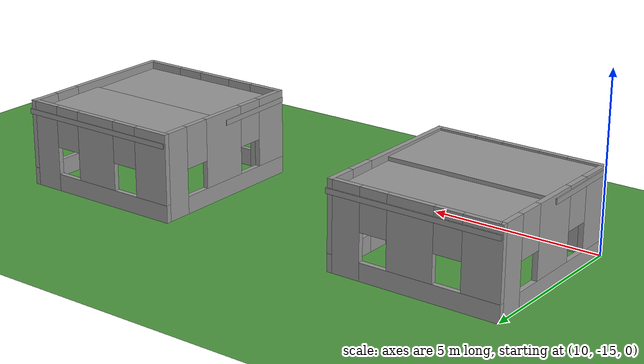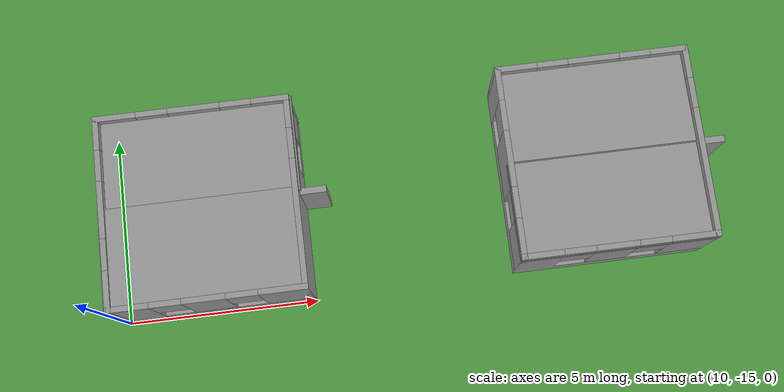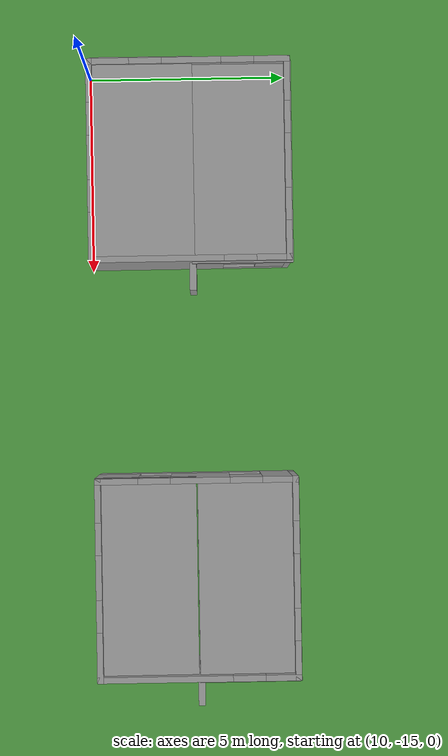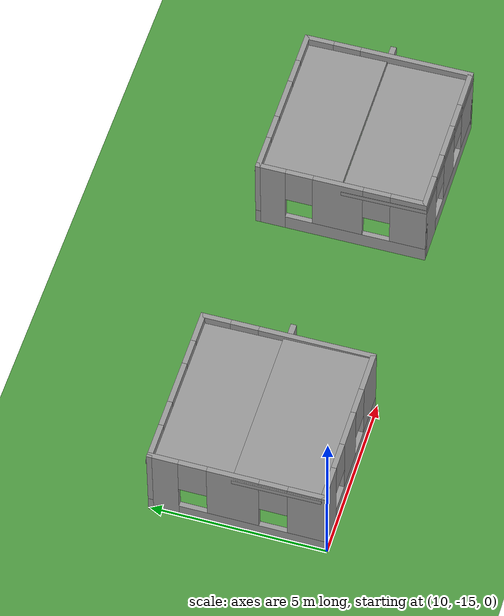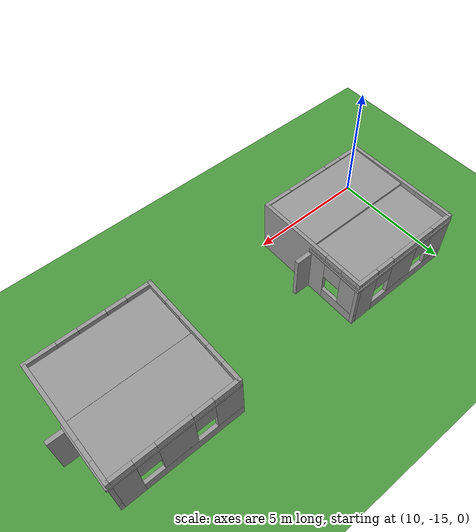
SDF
<sdf version="1.6">
 <world name="default">
  <model name="ground_plane">
   <static>1</static>
   <link name="link">
    <collision name="collision">
     <geometry><plane><normal>0 0 1</normal><size>500 500</size></plane></geometry>
     <surface><friction><ode><mu>100</mu><mu2>50</mu2></ode></friction></surface>
    </collision>
    <visual name="grass">
     <pose>0 0 -0.1 0 -0 0</pose>
     <cast_shadows>0</cast_shadows>
     <geometry><plane><normal>0 0 1</normal><size>100 100</size></plane></geometry>
     <material>
      <script><uri>file://media/materials/scripts/gazebo.material</uri><name>Gazebo/Grass</name></script>
     </material>
    </visual>
   </link>
  </model>
  <model name="5m">
   <pose>22.7986 -9.88215 2.17512 1.55349 -0 0</pose>
   <link name="Wall_0">
    <collision name="Wall_0_Collision">
     <geometry><box><size>5 0.15 2.5</size></box></geometry>
     <pose>0 0 1.25 0 -0 0</pose>
    </collision>
    <visual name="Wall_0_Visual">
     <pose>0 0 1.25 0 -0 0</pose>
     <geometry><box><size>5 0.15 2.5</size></box></geometry>
     <material>
      <script><uri>file://media/materials/scripts/gazebo.material</uri><name>Gazebo/Grey</name></script>
      <ambient>1 1 1 1</ambient>
     </material>
     <meta><layer>0</layer></meta>
    </visual>
   </link>
   <static>1</static>
  </model>
  <model name="House_1">
   <pose>12.4567 -12.4562 0 0 -0 0</pose>
   <link name="Door_0">
    <collision name="Door_0_Collision">
     <geometry><box><size>0.9 0.17 2</size></box></geometry>
     <pose>0 0 1 0 -0 0</pose>
    </collision>
    <visual name="Door_0_Visual">
     <pose>0 0 1 0 -0 0</pose>
     <geometry><box><size>0.9 0.17 2</size></box></geometry>
     <material>
      <script><uri>file://media/materials/scripts/gazebo.material</uri><name>Gazebo/Grey</name></script>
     </material>
    </visual>
    <pose>2.72267 0.051323 0 0 -0 0</pose>
   </link>
   <link name="Wall_2">
    <pose>0 2.425 0 0 -0 3.14159</pose>
    <visual name="Wall_2_Visual_0">
     <pose>-2.01333 0 1.25 0 -0 0</pose>
     <geometry><box><size>0.973339 0.15 2.5</size></box></geometry>
     <material>
      <script><uri>file://media/materials/scripts/gazebo.material</uri><name>Gazebo/Grey</name></script>
      <ambient>1 1 1 1</ambient>
     </material>
     <meta><layer>0</layer></meta>
    </visual>
    <collision name="Wall_2_Collision_0">
     <geometry><box><size>0.973339 0.15 2.5</size></box></geometry>
     <pose>-2.01333 0 1.25 0 -0 0</pose>
    </collision>
    <visual name="Wall_2_Visual_1">
     <pose>0.48667 0 0.25 0 -0 0</pose>
     <geometry><box><size>4.02666 0.15 0.5</size></box></geometry>
     <material>
      <script><uri>file://media/materials/scripts/gazebo.material</uri><name>Gazebo/Grey</name></script>
      <ambient>1 1 1 1</ambient>
     </material>
     <meta><layer>0</layer></meta>
    </visual>
    <collision name="Wall_2_Collision_1">
     <geometry><box><size>4.02666 0.15 0.5</size></box></geometry>
     <pose>0.48667 0 0.25 0 -0 0</pose>
    </collision>
    <visual name="Wall_2_Visual_2">
     <pose>-0.062653 0 1.5 0 -0 0</pose>
     <geometry><box><size>1.32802 0.15 2</size></box></geometry>
     <material>
      <script><uri>file://media/materials/scripts/gazebo.material</uri><name>Gazebo/Grey</name></script>
      <ambient>1 1 1 1</ambient>
     </material>
     <meta><layer>0</layer></meta>
    </visual>
    <collision name="Wall_2_Collision_2">
     <geometry><box><size>1.32802 0.15 2</size></box></geometry>
     <pose>-0.062653 0 1.5 0 -0 0</pose>
    </collision>
    <visual name="Wall_2_Visual_3">
     <pose>1.95068 0 1.5 0 -0 0</pose>
     <geometry><box><size>1.09865 0.15 2</size></box></geometry>
     <material>
      <script><uri>file://media/materials/scripts/gazebo.material</uri><name>Gazebo/Grey</name></script>
      <ambient>1 1 1 1</ambient>
     </material>
     <meta><layer>0</layer></meta>
    </visual>
    <collision name="Wall_2_Collision_3">
     <geometry><box><size>1.09865 0.15 2</size></box></geometry>
     <pose>1.95068 0 1.5 0 -0 0</pose>
    </collision>
    <visual name="Wall_2_Visual_4">
     <pose>-1.12666 0 1.9 0 -0 0</pose>
     <geometry><box><size>0.8 0.15 1.2</size></box></geometry>
     <material>
      <script><uri>file://media/materials/scripts/gazebo.material</uri><name>Gazebo/Grey</name></script>
      <ambient>1 1 1 1</ambient>
     </material>
     <meta><layer>0</layer></meta>
    </visual>
    <collision name="Wall_2_Collision_4">
     <geometry><box><size>0.8 0.15 1.2</size></box></geometry>
     <pose>-1.12666 0 1.9 0 -0 0</pose>
    </collision>
    <visual name="Wall_2_Visual_5">
     <pose>1.00135 0 1.9 0 -0 0</pose>
     <geometry><box><size>0.8 0.15 1.2</size></box></geometry>
     <material>
      <script><uri>file://media/materials/scripts/gazebo.material</uri><name>Gazebo/Grey</name></script>
      <ambient>1 1 1 1</ambient>
     </material>
     <meta><layer>0</layer></meta>
    </visual>
    <collision name="Wall_2_Collision_5">
     <geometry><box><size>0.8 0.15 1.2</size></box></geometry>
     <pose>1.00135 0 1.9 0 -0 0</pose>
    </collision>
   </link>
   <link name="Wall_3">
    <pose>-2.425 0 0 0 -0 -1.5708</pose>
    <visual name="Wall_3_Visual_0">
     <pose>-2.06087 0 1.25 0 -0 0</pose>
     <geometry><box><size>0.878268 0.15 2.5</size></box></geometry>
     <material>
      <script><uri>file://media/materials/scripts/gazebo.material</uri><name>Gazebo/Grey</name></script>
      <ambient>1 1 1 1</ambient>
     </material>
     <meta><layer>0</layer></meta>
    </visual>
    <collision name="Wall_3_Collision_0">
     <geometry><box><size>0.878268 0.15 2.5</size></box></geometry>
     <pose>-2.06087 0 1.25 0 -0 0</pose>
    </collision>
    <visual name="Wall_3_Visual_1">
     <pose>0.439134 0 0.25 0 -0 0</pose>
     <geometry><box><size>4.12173 0.15 0.5</size></box></geometry>
     <material>
      <script><uri>file://media/materials/scripts/gazebo.material</uri><name>Gazebo/Grey</name></script>
      <ambient>1 1 1 1</ambient>
     </material>
     <meta><layer>0</layer></meta>
    </visual>
    <collision name="Wall_3_Collision_1">
     <geometry><box><size>4.12173 0.15 0.5</size></box></geometry>
     <pose>0.439134 0 0.25 0 -0 0</pose>
    </collision>
    <visual name="Wall_3_Visual_2">
     <pose>-0.091224 0 1.5 0 -0 0</pose>
     <geometry><box><size>1.46102 0.15 2</size></box></geometry>
     <material>
      <script><uri>file://media/materials/scripts/gazebo.material</uri><name>Gazebo/Grey</name></script>
      <ambient>1 1 1 1</ambient>
     </material>
     <meta><layer>0</layer></meta>
    </visual>
    <collision name="Wall_3_Collision_2">
     <geometry><box><size>1.46102 0.15 2</size></box></geometry>
     <pose>-0.091224 0 1.5 0 -0 0</pose>
    </collision>
    <visual name="Wall_3_Visual_3">
     <pose>1.96964 0 1.5 0 -0 0</pose>
     <geometry><box><size>1.06072 0.15 2</size></box></geometry>
     <material>
      <script><uri>file://media/materials/scripts/gazebo.material</uri><name>Gazebo/Grey</name></script>
      <ambient>1 1 1 1</ambient>
     </material>
     <meta><layer>0</layer></meta>
    </visual>
    <collision name="Wall_3_Collision_3">
     <geometry><box><size>1.06072 0.15 2</size></box></geometry>
     <pose>1.96964 0 1.5 0 -0 0</pose>
    </collision>
    <visual name="Wall_3_Visual_4">
     <pose>-1.22173 0 1.9 0 -0 0</pose>
     <geometry><box><size>0.8 0.15 1.2</size></box></geometry>
     <material>
      <script><uri>file://media/materials/scripts/gazebo.material</uri><name>Gazebo/Grey</name></script>
      <ambient>1 1 1 1</ambient>
     </material>
     <meta><layer>0</layer></meta>
    </visual>
    <collision name="Wall_3_Collision_4">
     <geometry><box><size>0.8 0.15 1.2</size></box></geometry>
     <pose>-1.22173 0 1.9 0 -0 0</pose>
    </collision>
    <visual name="Wall_3_Visual_5">
     <pose>1.03929 0 1.9 0 -0 0</pose>
     <geometry><box><size>0.8 0.15 1.2</size></box></geometry>
     <material>
      <script><uri>file://media/materials/scripts/gazebo.material</uri><name>Gazebo/Grey</name></script>
      <ambient>1 1 1 1</ambient>
     </material>
     <meta><layer>0</layer></meta>
    </visual>
    <collision name="Wall_3_Collision_5">
     <geometry><box><size>0.8 0.15 1.2</size></box></geometry>
     <pose>1.03929 0 1.9 0 -0 0</pose>
    </collision>
   </link>
   <link name="Wall_4">
    <pose>0 -2.425 0 0 -0 0</pose>
    <visual name="Wall_4_Visual_0">
     <pose>-1.96398 0 1.25 0 -0 0</pose>
     <geometry><box><size>1.07204 0.15 2.5</size></box></geometry>
     <material>
      <script><uri>file://media/materials/scripts/gazebo.material</uri><name>Gazebo/Grey</name></script>
      <ambient>1 1 1 1</ambient>
     </material>
     <meta><layer>0</layer></meta>
    </visual>
    <collision name="Wall_4_Collision_0">
     <geometry><box><size>1.07204 0.15 2.5</size></box></geometry>
     <pose>-1.96398 0 1.25 0 -0 0</pose>
    </collision>
    <visual name="Wall_4_Visual_1">
     <pose>0.536022 0 0.25 0 -0 0</pose>
     <geometry><box><size>3.92796 0.15 0.5</size></box></geometry>
     <material>
      <script><uri>file://media/materials/scripts/gazebo.material</uri><name>Gazebo/Grey</name></script>
      <ambient>1 1 1 1</ambient>
     </material>
     <meta><layer>0</layer></meta>
    </visual>
    <collision name="Wall_4_Collision_1">
     <geometry><box><size>3.92796 0.15 0.5</size></box></geometry>
     <pose>0.536022 0 0.25 0 -0 0</pose>
    </collision>
    <visual name="Wall_4_Visual_2">
     <pose>-0.083648 0 1.5 0 -0 0</pose>
     <geometry><box><size>1.08861 0.15 2</size></box></geometry>
     <material>
      <script><uri>file://media/materials/scripts/gazebo.material</uri><name>Gazebo/Grey</name></script>
      <ambient>1 1 1 1</ambient>
     </material>
     <meta><layer>0</layer></meta>
    </visual>
    <collision name="Wall_4_Collision_2">
     <geometry><box><size>1.08861 0.15 2</size></box></geometry>
     <pose>-0.083648 0 1.5 0 -0 0</pose>
    </collision>
    <visual name="Wall_4_Visual_3">
     <pose>1.88033 0 1.5 0 -0 0</pose>
     <geometry><box><size>1.23934 0.15 2</size></box></geometry>
     <material>
      <script><uri>file://media/materials/scripts/gazebo.material</uri><name>Gazebo/Grey</name></script>
      <ambient>1 1 1 1</ambient>
     </material>
     <meta><layer>0</layer></meta>
    </visual>
    <collision name="Wall_4_Collision_3">
     <geometry><box><size>1.23934 0.15 2</size></box></geometry>
     <pose>1.88033 0 1.5 0 -0 0</pose>
    </collision>
    <visual name="Wall_4_Visual_4">
     <pose>-1.02796 0 1.9 0 -0 0</pose>
     <geometry><box><size>0.8 0.15 1.2</size></box></geometry>
     <material>
      <script><uri>file://media/materials/scripts/gazebo.material</uri><name>Gazebo/Grey</name></script>
      <ambient>1 1 1 1</ambient>
     </material>
     <meta><layer>0</layer></meta>
    </visual>
    <collision name="Wall_4_Collision_4">
     <geometry><box><size>0.8 0.15 1.2</size></box></geometry>
     <pose>-1.02796 0 1.9 0 -0 0</pose>
    </collision>
    <visual name="Wall_4_Visual_5">
     <pose>0.860659 0 1.9 0 -0 0</pose>
     <geometry><box><size>0.8 0.15 1.2</size></box></geometry>
     <material>
      <script><uri>file://media/materials/scripts/gazebo.material</uri><name>Gazebo/Grey</name></script>
      <ambient>1 1 1 1</ambient>
     </material>
     <meta><layer>0</layer></meta>
    </visual>
    <collision name="Wall_4_Collision_5">
     <geometry><box><size>0.8 0.15 1.2</size></box></geometry>
     <pose>0.860659 0 1.9 0 -0 0</pose>
    </collision>
   </link>
   <link name="Wall_5">
    <pose>2.425 0 0 0 -0 1.5708</pose>
    <visual name="Wall_5_Visual_0">
     <pose>-0.839134 0 1.25 0 -0 0</pose>
     <geometry><box><size>3.32173 0.15 2.5</size></box></geometry>
     <material>
      <script><uri>file://media/materials/scripts/gazebo.material</uri><name>Gazebo/Grey</name></script>
      <ambient>1 1 1 1</ambient>
     </material>
     <meta><layer>0</layer></meta>
    </visual>
    <collision name="Wall_5_Collision_0">
     <geometry><box><size>3.32173 0.15 2.5</size></box></geometry>
     <pose>-0.839134 0 1.25 0 -0 0</pose>
    </collision>
    <visual name="Wall_5_Visual_1">
     <pose>1.66087 0 0.25 0 -0 0</pose>
     <geometry><box><size>1.67827 0.15 0.5</size></box></geometry>
     <material>
      <script><uri>file://media/materials/scripts/gazebo.material</uri><name>Gazebo/Grey</name></script>
      <ambient>1 1 1 1</ambient>
     </material>
     <meta><layer>0</layer></meta>
    </visual>
    <collision name="Wall_5_Collision_1">
     <geometry><box><size>1.67827 0.15 0.5</size></box></geometry>
     <pose>1.66087 0 0.25 0 -0 0</pose>
    </collision>
    <visual name="Wall_5_Visual_2">
     <pose>2.06087 0 1.5 0 -0 0</pose>
     <geometry><box><size>0.878268 0.15 2</size></box></geometry>
     <material>
      <script><uri>file://media/materials/scripts/gazebo.material</uri><name>Gazebo/Grey</name></script>
      <ambient>1 1 1 1</ambient>
     </material>
     <meta><layer>0</layer></meta>
    </visual>
    <collision name="Wall_5_Collision_2">
     <geometry><box><size>0.878268 0.15 2</size></box></geometry>
     <pose>2.06087 0 1.5 0 -0 0</pose>
    </collision>
    <visual name="Wall_5_Visual_3">
     <pose>1.22173 0 1.9 0 -0 0</pose>
     <geometry><box><size>0.8 0.15 1.2</size></box></geometry>
     <material>
      <script><uri>file://media/materials/scripts/gazebo.material</uri><name>Gazebo/Grey</name></script>
      <ambient>1 1 1 1</ambient>
     </material>
     <meta><layer>0</layer></meta>
    </visual>
    <collision name="Wall_5_Collision_3">
     <geometry><box><size>0.8 0.15 1.2</size></box></geometry>
     <pose>1.22173 0 1.9 0 -0 0</pose>
    </collision>
   </link>
   <static>1</static>
  </model>
  <model name="House_2">
   <pose>22.7443 -12.4024 0 0 -0 0</pose>
   <link name="Door_0">
    <collision name="Door_0_Collision">
     <geometry><box><size>0.9 0.17 2</size></box></geometry>
     <pose>0 0 1 0 -0 0</pose>
    </collision>
    <visual name="Door_0_Visual">
     <pose>0 0 1 0 -0 0</pose>
     <geometry><box><size>0.9 0.17 2</size></box></geometry>
     <material>
      <script><uri>file://media/materials/scripts/gazebo.material</uri><name>Gazebo/Grey</name></script>
     </material>
    </visual>
    <pose>2.72267 0.051323 0 0 -0 0</pose>
   </link>
   <link name="Wall_2">
    <pose>0 2.425 0 0 -0 3.14159</pose>
    <visual name="Wall_2_Visual_0">
     <pose>-2.01333 0 1.25 0 -0 0</pose>
     <geometry><box><size>0.973339 0.15 2.5</size></box></geometry>
     <material>
      <script><uri>file://media/materials/scripts/gazebo.material</uri><name>Gazebo/Grey</name></script>
      <ambient>1 1 1 1</ambient>
     </material>
     <meta><layer>0</layer></meta>
    </visual>
    <collision name="Wall_2_Collision_0">
     <geometry><box><size>0.973339 0.15 2.5</size></box></geometry>
     <pose>-2.01333 0 1.25 0 -0 0</pose>
    </collision>
    <visual name="Wall_2_Visual_1">
     <pose>0.48667 0 0.25 0 -0 0</pose>
     <geometry><box><size>4.02666 0.15 0.5</size></box></geometry>
     <material>
      <script><uri>file://media/materials/scripts/gazebo.material</uri><name>Gazebo/Grey</name></script>
      <ambient>1 1 1 1</ambient>
     </material>
     <meta><layer>0</layer></meta>
    </visual>
    <collision name="Wall_2_Collision_1">
     <geometry><box><size>4.02666 0.15 0.5</size></box></geometry>
     <pose>0.48667 0 0.25 0 -0 0</pose>
    </collision>
    <visual name="Wall_2_Visual_2">
     <pose>-0.062653 0 1.5 0 -0 0</pose>
     <geometry><box><size>1.32802 0.15 2</size></box></geometry>
     <material>
      <script><uri>file://media/materials/scripts/gazebo.material</uri><name>Gazebo/Grey</name></script>
      <ambient>1 1 1 1</ambient>
     </material>
     <meta><layer>0</layer></meta>
    </visual>
    <collision name="Wall_2_Collision_2">
     <geometry><box><size>1.32802 0.15 2</size></box></geometry>
     <pose>-0.062653 0 1.5 0 -0 0</pose>
    </collision>
    <visual name="Wall_2_Visual_3">
     <pose>1.95068 0 1.5 0 -0 0</pose>
     <geometry><box><size>1.09865 0.15 2</size></box></geometry>
     <material>
      <script><uri>file://media/materials/scripts/gazebo.material</uri><name>Gazebo/Grey</name></script>
      <ambient>1 1 1 1</ambient>
     </material>
     <meta><layer>0</layer></meta>
    </visual>
    <collision name="Wall_2_Collision_3">
     <geometry><box><size>1.09865 0.15 2</size></box></geometry>
     <pose>1.95068 0 1.5 0 -0 0</pose>
    </collision>
    <visual name="Wall_2_Visual_4">
     <pose>-1.12666 0 1.9 0 -0 0</pose>
     <geometry><box><size>0.8 0.15 1.2</size></box></geometry>
     <material>
      <script><uri>file://media/materials/scripts/gazebo.material</uri><name>Gazebo/Grey</name></script>
      <ambient>1 1 1 1</ambient>
     </material>
     <meta><layer>0</layer></meta>
    </visual>
    <collision name="Wall_2_Collision_4">
     <geometry><box><size>0.8 0.15 1.2</size></box></geometry>
     <pose>-1.12666 0 1.9 0 -0 0</pose>
    </collision>
    <visual name="Wall_2_Visual_5">
     <pose>1.00135 0 1.9 0 -0 0</pose>
     <geometry><box><size>0.8 0.15 1.2</size></box></geometry>
     <material>
      <script><uri>file://media/materials/scripts/gazebo.material</uri><name>Gazebo/Grey</name></script>
      <ambient>1 1 1 1</ambient>
     </material>
     <meta><layer>0</layer></meta>
    </visual>
    <collision name="Wall_2_Collision_5">
     <geometry><box><size>0.8 0.15 1.2</size></box></geometry>
     <pose>1.00135 0 1.9 0 -0 0</pose>
    </collision>
   </link>
   <link name="Wall_3">
    <pose>-2.425 0 0 0 -0 -1.5708</pose>
    <visual name="Wall_3_Visual_0">
     <pose>-2.06087 0 1.25 0 -0 0</pose>
     <geometry><box><size>0.878268 0.15 2.5</size></box></geometry>
     <material>
      <script><uri>file://media/materials/scripts/gazebo.material</uri><name>Gazebo/Grey</name></script>
      <ambient>1 1 1 1</ambient>
     </material>
     <meta><layer>0</layer></meta>
    </visual>
    <collision name="Wall_3_Collision_0">
     <geometry><box><size>0.878268 0.15 2.5</size></box></geometry>
     <pose>-2.06087 0 1.25 0 -0 0</pose>
    </collision>
    <visual name="Wall_3_Visual_1">
     <pose>0.439134 0 0.25 0 -0 0</pose>
     <geometry><box><size>4.12173 0.15 0.5</size></box></geometry>
     <material>
      <script><uri>file://media/materials/scripts/gazebo.material</uri><name>Gazebo/Grey</name></script>
      <ambient>1 1 1 1</ambient>
     </material>
     <meta><layer>0</layer></meta>
    </visual>
    <collision name="Wall_3_Collision_1">
     <geometry><box><size>4.12173 0.15 0.5</size></box></geometry>
     <pose>0.439134 0 0.25 0 -0 0</pose>
    </collision>
    <visual name="Wall_3_Visual_2">
     <pose>-0.091224 0 1.5 0 -0 0</pose>
     <geometry><box><size>1.46102 0.15 2</size></box></geometry>
     <material>
      <script><uri>file://media/materials/scripts/gazebo.material</uri><name>Gazebo/Grey</name></script>
      <ambient>1 1 1 1</ambient>
     </material>
     <meta><layer>0</layer></meta>
    </visual>
    <collision name="Wall_3_Collision_2">
     <geometry><box><size>1.46102 0.15 2</size></box></geometry>
     <pose>-0.091224 0 1.5 0 -0 0</pose>
    </collision>
    <visual name="Wall_3_Visual_3">
     <pose>1.96964 0 1.5 0 -0 0</pose>
     <geometry><box><size>1.06072 0.15 2</size></box></geometry>
     <material>
      <script><uri>file://media/materials/scripts/gazebo.material</uri><name>Gazebo/Grey</name></script>
      <ambient>1 1 1 1</ambient>
     </material>
     <meta><layer>0</layer></meta>
    </visual>
    <collision name="Wall_3_Collision_3">
     <geometry><box><size>1.06072 0.15 2</size></box></geometry>
     <pose>1.96964 0 1.5 0 -0 0</pose>
    </collision>
    <visual name="Wall_3_Visual_4">
     <pose>-1.22173 0 1.9 0 -0 0</pose>
     <geometry><box><size>0.8 0.15 1.2</size></box></geometry>
     <material>
      <script><uri>file://media/materials/scripts/gazebo.material</uri><name>Gazebo/Grey</name></script>
      <ambient>1 1 1 1</ambient>
     </material>
     <meta><layer>0</layer></meta>
    </visual>
    <collision name="Wall_3_Collision_4">
     <geometry><box><size>0.8 0.15 1.2</size></box></geometry>
     <pose>-1.22173 0 1.9 0 -0 0</pose>
    </collision>
    <visual name="Wall_3_Visual_5">
     <pose>1.03929 0 1.9 0 -0 0</pose>
     <geometry><box><size>0.8 0.15 1.2</size></box></geometry>
     <material>
      <script><uri>file://media/materials/scripts/gazebo.material</uri><name>Gazebo/Grey</name></script>
      <ambient>1 1 1 1</ambient>
     </material>
     <meta><layer>0</layer></meta>
    </visual>
    <collision name="Wall_3_Collision_5">
     <geometry><box><size>0.8 0.15 1.2</size></box></geometry>
     <pose>1.03929 0 1.9 0 -0 0</pose>
    </collision>
   </link>
   <link name="Wall_4">
    <pose>0 -2.425 0 0 -0 0</pose>
    <visual name="Wall_4_Visual_0">
     <pose>-1.96398 0 1.25 0 -0 0</pose>
     <geometry><box><size>1.07204 0.15 2.5</size></box></geometry>
     <material>
      <script><uri>file://media/materials/scripts/gazebo.material</uri><name>Gazebo/Grey</name></script>
      <ambient>1 1 1 1</ambient>
     </material>
     <meta><layer>0</layer></meta>
    </visual>
    <collision name="Wall_4_Collision_0">
     <geometry><box><size>1.07204 0.15 2.5</size></box></geometry>
     <pose>-1.96398 0 1.25 0 -0 0</pose>
    </collision>
    <visual name="Wall_4_Visual_1">
     <pose>0.536022 0 0.25 0 -0 0</pose>
     <geometry><box><size>3.92796 0.15 0.5</size></box></geometry>
     <material>
      <script><uri>file://media/materials/scripts/gazebo.material</uri><name>Gazebo/Grey</name></script>
      <ambient>1 1 1 1</ambient>
     </material>
     <meta><layer>0</layer></meta>
    </visual>
    <collision name="Wall_4_Collision_1">
     <geometry><box><size>3.92796 0.15 0.5</size></box></geometry>
     <pose>0.536022 0 0.25 0 -0 0</pose>
    </collision>
    <visual name="Wall_4_Visual_2">
     <pose>-0.083648 0 1.5 0 -0 0</pose>
     <geometry><box><size>1.08861 0.15 2</size></box></geometry>
     <material>
      <script><uri>file://media/materials/scripts/gazebo.material</uri><name>Gazebo/Grey</name></script>
      <ambient>1 1 1 1</ambient>
     </material>
     <meta><layer>0</layer></meta>
    </visual>
    <collision name="Wall_4_Collision_2">
     <geometry><box><size>1.08861 0.15 2</size></box></geometry>
     <pose>-0.083648 0 1.5 0 -0 0</pose>
    </collision>
    <visual name="Wall_4_Visual_3">
     <pose>1.88033 0 1.5 0 -0 0</pose>
     <geometry><box><size>1.23934 0.15 2</size></box></geometry>
     <material>
      <script><uri>file://media/materials/scripts/gazebo.material</uri><name>Gazebo/Grey</name></script>
      <ambient>1 1 1 1</ambient>
     </material>
     <meta><layer>0</layer></meta>
    </visual>
    <collision name="Wall_4_Collision_3">
     <geometry><box><size>1.23934 0.15 2</size></box></geometry>
     <pose>1.88033 0 1.5 0 -0 0</pose>
    </collision>
    <visual name="Wall_4_Visual_4">
     <pose>-1.02796 0 1.9 0 -0 0</pose>
     <geometry><box><size>0.8 0.15 1.2</size></box></geometry>
     <material>
      <script><uri>file://media/materials/scripts/gazebo.material</uri><name>Gazebo/Grey</name></script>
      <ambient>1 1 1 1</ambient>
     </material>
     <meta><layer>0</layer></meta>
    </visual>
    <collision name="Wall_4_Collision_4">
     <geometry><box><size>0.8 0.15 1.2</size></box></geometry>
     <pose>-1.02796 0 1.9 0 -0 0</pose>
    </collision>
    <visual name="Wall_4_Visual_5">
     <pose>0.860659 0 1.9 0 -0 0</pose>
     <geometry><box><size>0.8 0.15 1.2</size></box></geometry>
     <material>
      <script><uri>file://media/materials/scripts/gazebo.material</uri><name>Gazebo/Grey</name></script>
      <ambient>1 1 1 1</ambient>
     </material>
     <meta><layer>0</layer></meta>
    </visual>
    <collision name="Wall_4_Collision_5">
     <geometry><box><size>0.8 0.15 1.2</size></box></geometry>
     <pose>0.860659 0 1.9 0 -0 0</pose>
    </collision>
   </link>
   <link name="Wall_5">
    <pose>2.425 0 0 0 -0 1.5708</pose>
    <visual name="Wall_5_Visual_0">
     <pose>-0.839134 0 1.25 0 -0 0</pose>
     <geometry><box><size>3.32173 0.15 2.5</size></box></geometry>
     <material>
      <script><uri>file://media/materials/scripts/gazebo.material</uri><name>Gazebo/Grey</name></script>
      <ambient>1 1 1 1</ambient>
     </material>
     <meta><layer>0</layer></meta>
    </visual>
    <collision name="Wall_5_Collision_0">
     <geometry><box><size>3.32173 0.15 2.5</size></box></geometry>
     <pose>-0.839134 0 1.25 0 -0 0</pose>
    </collision>
    <visual name="Wall_5_Visual_1">
     <pose>1.66087 0 0.25 0 -0 0</pose>
     <geometry><box><size>1.67827 0.15 0.5</size></box></geometry>
     <material>
      <script><uri>file://media/materials/scripts/gazebo.material</uri><name>Gazebo/Grey</name></script>
      <ambient>1 1 1 1</ambient>
     </material>
     <meta><layer>0</layer></meta>
    </visual>
    <collision name="Wall_5_Collision_1">
     <geometry><box><size>1.67827 0.15 0.5</size></box></geometry>
     <pose>1.66087 0 0.25 0 -0 0</pose>
    </collision>
    <visual name="Wall_5_Visual_2">
     <pose>2.06087 0 1.5 0 -0 0</pose>
     <geometry><box><size>0.878268 0.15 2</size></box></geometry>
     <material>
      <script><uri>file://media/materials/scripts/gazebo.material</uri><name>Gazebo/Grey</name></script>
      <ambient>1 1 1 1</ambient>
     </material>
     <meta><layer>0</layer></meta>
    </visual>
    <collision name="Wall_5_Collision_2">
     <geometry><box><size>0.878268 0.15 2</size></box></geometry>
     <pose>2.06087 0 1.5 0 -0 0</pose>
    </collision>
    <visual name="Wall_5_Visual_3">
     <pose>1.22173 0 1.9 0 -0 0</pose>
     <geometry><box><size>0.8 0.15 1.2</size></box></geometry>
     <material>
      <script><uri>file://media/materials/scripts/gazebo.material</uri><name>Gazebo/Grey</name></script>
      <ambient>1 1 1 1</ambient>
     </material>
     <meta><layer>0</layer></meta>
    </visual>
    <collision name="Wall_5_Collision_3">
     <geometry><box><size>0.8 0.15 1.2</size></box></geometry>
     <pose>1.22173 0 1.9 0 -0 0</pose>
    </collision>
   </link>
   <static>1</static>
  </model>
  <model name="5m_clone_0">
   <pose>22.7369 -12.4094 2.17512 1.55349 -0 0</pose>
   <link name="Wall_0">
    <collision name="Wall_0_Collision">
     <geometry><box><size>5 0.15 2.5</size></box></geometry>
     <pose>0 0 1.25 0 -0 0</pose>
    </collision>
    <visual name="Wall_0_Visual">
     <pose>0 0 1.25 0 -0 0</pose>
     <geometry><box><size>5 0.15 2.5</size></box></geometry>
     <material>
      <script><uri>file://media/materials/scripts/gazebo.material</uri><name>Gazebo/Grey</name></script>
      <ambient>1 1 1 1</ambient>
     </material>
     <meta><layer>0</layer></meta>
    </visual>
   </link>
   <static>1</static>
  </model>
  <model name="5m_clone_6">
   <pose>12.4236 -12.3503 2.32701 1.55349 -0 0</pose>
   <link name="Wall_0">
    <collision name="Wall_0_Collision">
     <geometry><box><size>5 0.15 2.5</size></box></geometry>
     <pose>0 0 1.25 0 -0 0</pose>
    </collision>
    <visual name="Wall_0_Visual">
     <pose>0 0 1.25 0 -0 0</pose>
     <geometry><box><size>5 0.15 2.5</size></box></geometry>
     <material>
      <script><uri>file://media/materials/scripts/gazebo.material</uri><name>Gazebo/Grey</name></script>
      <ambient>1 1 1 1</ambient>
     </material>
     <meta><layer>0</layer></meta>
    </visual>
   </link>
   <static>1</static>
  </model>
  <model name="5m_clone_7">
   <pose>12.4971 -9.92172 2.17512 1.55349 -0 0</pose>
   <link name="Wall_0">
    <collision name="Wall_0_Collision">
     <geometry><box><size>5 0.15 2.5</size></box></geometry>
     <pose>0 0 1.25 0 -0 0</pose>
    </collision>
    <visual name="Wall_0_Visual">
     <pose>0 0 1.25 0 -0 0</pose>
     <geometry><box><size>5 0.15 2.5</size></box></geometry>
     <material>
      <script><uri>file://media/materials/scripts/gazebo.material</uri><name>Gazebo/Grey</name></script>
      <ambient>1 1 1 1</ambient>
     </material>
     <meta><layer>0</layer></meta>
    </visual>
   </link>
   <static>1</static>
  </model>
 </world>
</sdf>
